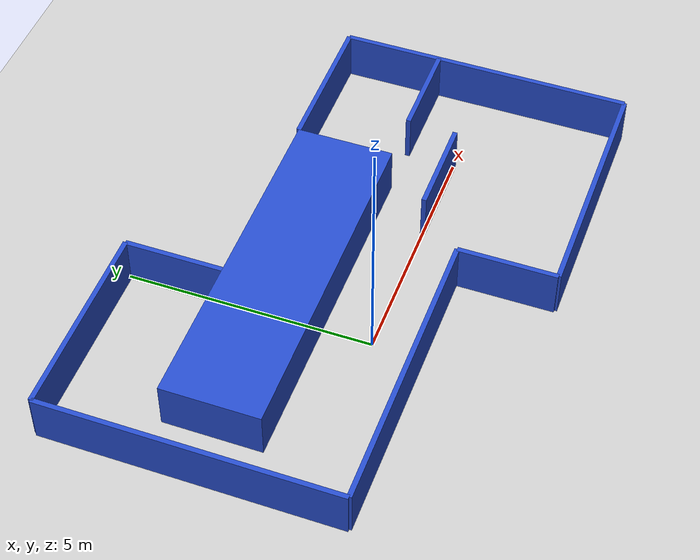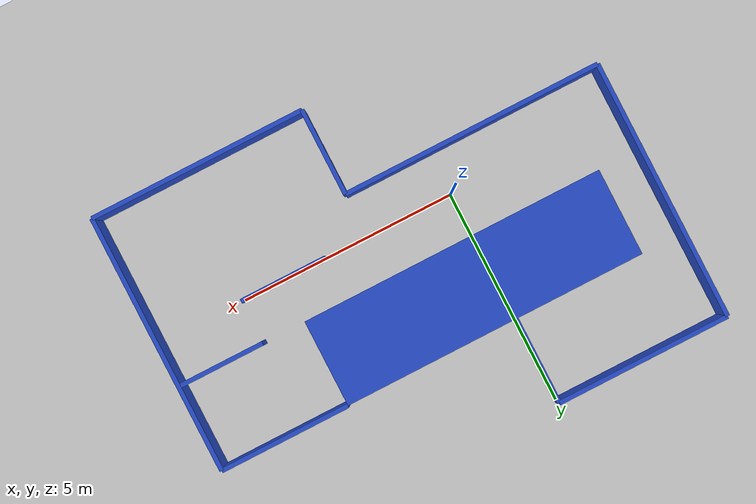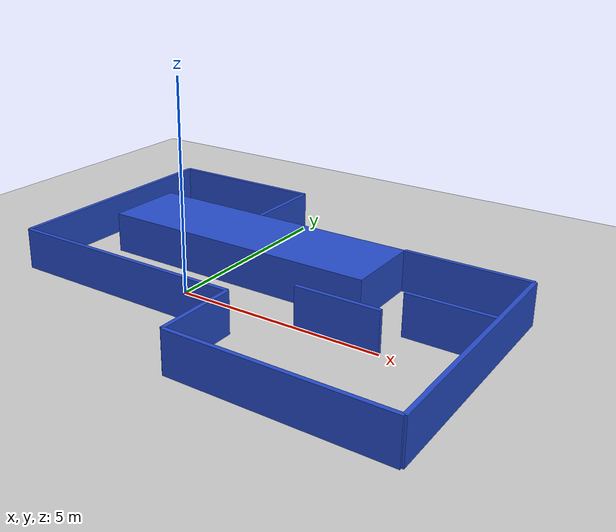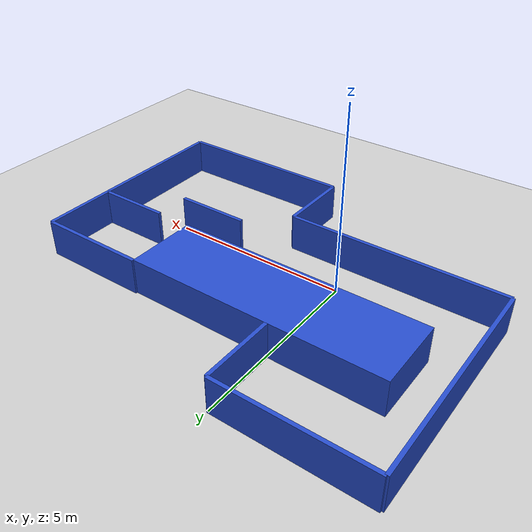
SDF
<?xml version="1.0" ?>
<sdf version="1.7">
  <world name="simple_labyrinth_world">

    <!-- Set the scene properties -->
    <scene>
      <background>0.7 0.7 0.7 1</background>
      <shadows>true</shadows>
      <origin_visual>false</origin_visual> <!-- Disable the XYZ axes -->
    </scene>

    <!-- Set the initial camera to a top-down view -->
    <gui>
      <camera name="user_camera">
        <pose>1 1 14 0 1.5707 1.5707</pose> <!-- Top-down view -->
        <view_controller>orbit</view_controller>
      </camera>
    </gui>
    <!-- Include the default ground plane -->
    <include>
      <uri>model://ground_plane</uri>
    </include>

    <!-- Include the default sun -->
    <include>
      <uri>model://sun</uri>
    </include>

    <!-- Create walls of the labyrinth using box-shaped models -->
    <!-- Example of a wall -->
    <model name="wall_1">
      <pose>2 -2 0.5 0 0 0</pose> <!-- Position: x, y, z. Height: 0.5 meters -->
      <static>true</static>
      <link name="link">
        <collision name="collision">
          <geometry>
            <box>
              <size>0.1 2 1</size> <!-- Length: 0.1m, Thickness: 0.1m, Height: 1m -->
            </box>
          </geometry>
        </collision>
        <visual name="visual">
          <geometry>
            <box>
              <size>0.1 2 1</size> <!-- Same dimensions as the collision -->
            </box>
          </geometry>
          <material>
            <script>
              <uri>file://media/materials/scripts/gazebo.material</uri>
              <name>Gazebo/Blue</name> <!-- Choose the color for the walls -->
            </script>
          </material>
        </visual>
      </link>
    </model>

    <!-- Create another wall -->
    <model name="wall_2">
      <pose>-1 -1 0.5 0 0 0</pose>
      <static>true</static>
      <link name="link">
        <collision name="collision">
          <geometry>
            <box>
              <size>6 0.1 1</size>
            </box>
          </geometry>
        </collision>
        <visual name="visual">
          <geometry>
            <box>
              <size>6 0.1 1</size>
            </box>
          </geometry>
          <material>
            <script>
              <uri>file://media/materials/scripts/gazebo.material</uri>
              <name>Gazebo/Blue</name>
            </script>
          </material>
        </visual>
      </link>
    </model>
    <model name="wall_3">
      <pose>-4 2 0.5 0 0 0</pose>
      <static>true</static>
      <link name="link">
        <collision name="collision">
          <geometry>
            <box>
              <size>0.1 6 1</size>
            </box>
          </geometry>
        </collision>
        <visual name="visual">
          <geometry>
            <box>
              <size>0.1 6 1</size>
            </box>
          </geometry>
          <material>
            <script>
              <uri>file://media/materials/scripts/gazebo.material</uri>
              <name>Gazebo/Blue</name>
            </script>
          </material>
        </visual>
      </link>
    </model>
    <model name="wall_4">
      <pose>-2 5 0.5 0 0 0</pose>
      <static>true</static>
      <link name="link">
        <collision name="collision">
          <geometry>
            <box>
              <size>4 0.1 1</size>
            </box>
          </geometry>
        </collision>
        <visual name="visual">
          <geometry>
            <box>
              <size>4 0.1 1</size>
            </box>
          </geometry>
          <material>
            <script>
              <uri>file://media/materials/scripts/gazebo.material</uri>
              <name>Gazebo/Blue</name>
            </script>
          </material>
        </visual>
      </link>
    </model>
    <model name="wall_5">
      <pose>0 4 0.5 0 0 0</pose>
      <static>true</static>
      <link name="link">
        <collision name="collision">
          <geometry>
            <box>
              <size>0.1 2 1</size>
            </box>
          </geometry>
        </collision>
        <visual name="visual">
          <geometry>
            <box>
              <size>0.1 2 1</size>
            </box>
          </geometry>
          <material>
            <script>
              <uri>file://media/materials/scripts/gazebo.material</uri>
              <name>Gazebo/Blue</name>
            </script>
          </material>
        </visual>
      </link>
    </model>
    <model name="wall_6">
      <pose>4.5 -3 0.5 0 0 0</pose>
      <static>true</static>
      <link name="link">
        <collision name="collision">
          <geometry>
            <box>
              <size>5 0.1 1</size>
            </box>
          </geometry>
        </collision>
        <visual name="visual">
          <geometry>
            <box>
              <size>5 0.1 1</size>
            </box>
          </geometry>
          <material>
            <script>
              <uri>file://media/materials/scripts/gazebo.material</uri>
              <name>Gazebo/Blue</name>
            </script>
          </material>
        </visual>
      </link>
    </model>
    <model name="wall_7">
      <pose>7 0 0.5 0 0 0</pose>
      <static>true</static>
      <link name="link">
        <collision name="collision">
          <geometry>
            <box>
              <size>0.1 6 1</size>
            </box>
          </geometry>
        </collision>
        <visual name="visual">
          <geometry>
            <box>
              <size>0.1 6 1</size>
            </box>
          </geometry>
          <material>
            <script>
              <uri>file://media/materials/scripts/gazebo.material</uri>
              <name>Gazebo/Blue</name>
            </script>
          </material>
        </visual>
      </link>
    </model>
    <model name="wall_8">
      <pose>5.5 3 0.5 0 0 0</pose>
      <static>true</static>
      <link name="link">
        <collision name="collision">
          <geometry>
            <box>
              <size>3 0.1 1</size>
            </box>
          </geometry>
        </collision>
        <visual name="visual">
          <geometry>
            <box>
              <size>3 0.1 1</size>
            </box>
          </geometry>
          <material>
            <script>
              <uri>file://media/materials/scripts/gazebo.material</uri>
              <name>Gazebo/Blue</name>
            </script>
          </material>
        </visual>
      </link>
    </model>
    <model name="wall_9">
      <pose>4 0 0.5 0 0 0</pose>
      <static>true</static>
      <link name="link">
        <collision name="collision">
          <geometry>
            <box>
              <size>2 0.1 1</size>
            </box>
          </geometry>
        </collision>
        <visual name="visual">
          <geometry>
            <box>
              <size>2 0.1 1</size>
            </box>
          </geometry>
          <material>
            <script>
              <uri>file://media/materials/scripts/gazebo.material</uri>
              <name>Gazebo/Blue</name>
            </script>
          </material>
        </visual>
      </link>
    </model>
    <model name="wall_10">
      <pose>6 1 0.5 0 0 0</pose>
      <static>true</static>
      <link name="link">
        <collision name="collision">
          <geometry>
            <box>
              <size>2 0.1 1</size>
            </box>
          </geometry>
        </collision>
        <visual name="visual">
          <geometry>
            <box>
              <size>2 0.1 1</size>
            </box>
          </geometry>
          <material>
            <script>
              <uri>file://media/materials/scripts/gazebo.material</uri>
              <name>Gazebo/Blue</name>
            </script>
          </material>
        </visual>
      </link>
    </model>
    <model name="box_1">
      <pose>0.5 2 0.5 0 0 0</pose>
      <static>true</static>
      <link name="link">
        <collision name="collision">
          <geometry>
            <box>
              <size>7 2 1</size>
            </box>
          </geometry>
        </collision>
        <visual name="visual">
          <geometry>
            <box>
              <size>7 2 1</size>
            </box>
          </geometry>
          <material>
            <script>
              <uri>file://media/materials/scripts/gazebo.material</uri>
              <name>Gazebo/Blue</name>
            </script>
          </material>
        </visual>
      </link>
    </model>

  </world>
</sdf>
